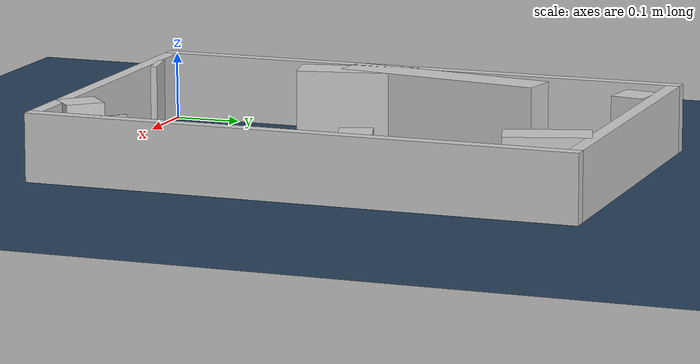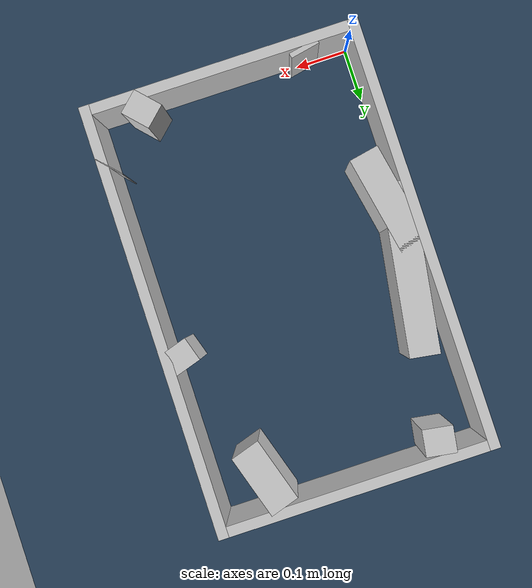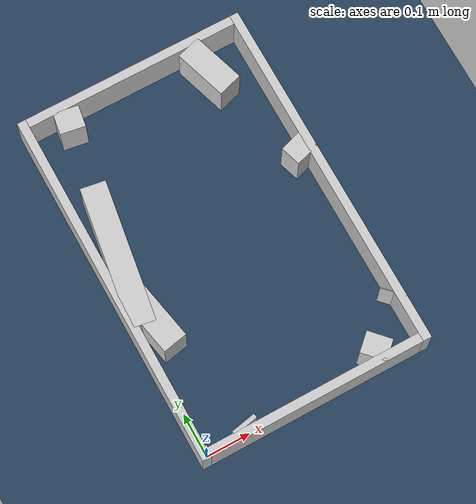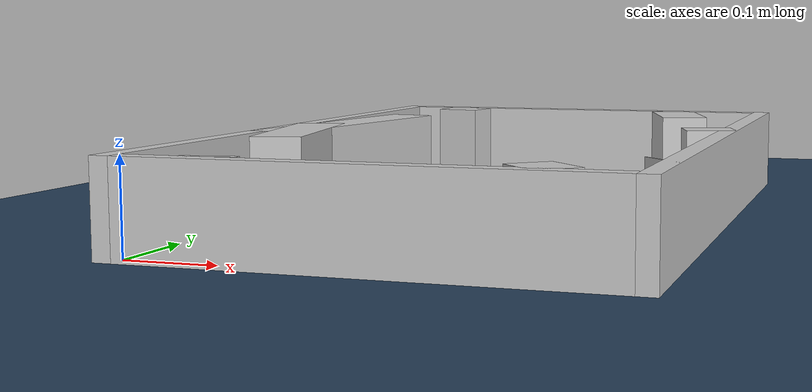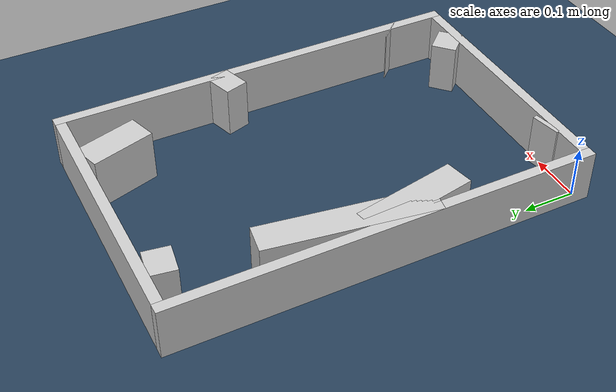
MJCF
<?xml version="1.0" ?>
<mujoco model="generated_real_template">
  <compiler angle="degree"/>
  <option timestep="0.002" integrator="implicitfast" iterations="100" cone="elliptic"/>
  <default>
    <geom density="1"/>
  </default>
  <asset>
    <texture builtin="gradient" height="3072" rgb1="0.3 0.5 0.7" rgb2="0 0 0" type="skybox" width="512"/>
    <texture builtin="checker" height="300" mark="edge" markrgb="0.8 0.8 0.8" name="groundplane" rgb1="0.2 0.3 0.4" rgb2="0.1 0.2 0.3" type="2d" width="300"/>
    <material name="groundplane" reflectance="0.2" texrepeat="5 5" texture="groundplane" texuniform="true"/>
  </asset>
  <worldbody>
    <light dir="0 0 -1" directional="true" pos="0 0 1.5"/>
    <geom name="floor" type="plane" condim="4" friction="0.5 0.005 0.001" material="groundplane" size="0 0 0.05"/>
    <body name="walls">
      <geom name="wall_boundary_left" type="box" condim="4" friction="1.0 0.005 0.0001" rgba="0.8 0.8 0.8 1" pos="-0.010000 0.387500 0.050000" euler="0 0 0.000000" size="0.010000 0.407500 0.050000"/>
      <geom name="wall_boundary_right" type="box" condim="4" friction="1.0 0.005 0.0001" rgba="0.8 0.8 0.8 1" pos="0.500000 0.387500 0.050000" euler="0 0 0.000000" size="0.010000 0.407500 0.050000"/>
      <geom name="wall_boundary_bottom" type="box" condim="4" friction="1.0 0.005 0.0001" rgba="0.8 0.8 0.8 1" pos="0.245000 -0.010000 0.050000" euler="0 0 0.000000" size="0.245000 0.010000 0.050000"/>
      <geom name="wall_boundary_top" type="box" condim="4" friction="1.0 0.005 0.0001" rgba="0.8 0.8 0.8 1" pos="0.245000 0.785000 0.050000" euler="0 0 0.000000" size="0.245000 0.010000 0.050000"/>
      <geom name="wall_inner_1_1" type="box" condim="4" friction="1.0 0.005 0.0001" rgba="0.8 0.8 0.8 1" pos="0.080713 0.750421 0.050000" euler="0 0 -98.852876" size="0.024876 0.028500 0.050000"/>
      <geom name="wall_inner_1_2" type="box" condim="4" friction="1.0 0.005 0.0001" rgba="0.8 0.8 0.8 1" pos="0.032663 0.441922 0.050000" euler="0 0 -98.852876" size="0.159208 0.028500 0.050000"/>
      <geom name="wall_inner_2_1" type="box" condim="4" friction="1.0 0.005 0.0001" rgba="0.8 0.8 0.8 1" pos="0.475750 0.464565 0.050000" euler="0 0 107.319350" size="0.023652 0.028500 0.050000"/>
      <geom name="wall_inner_2_2" type="box" condim="4" friction="1.0 0.005 0.0001" rgba="0.8 0.8 0.8 1" pos="0.397410 0.715787 0.050000" euler="0 0 107.319350" size="0.062025 0.028500 0.050000"/>
      <geom name="wall_inner_3_1" type="box" condim="4" friction="1.0 0.005 0.0001" rgba="0.8 0.8 0.8 1" pos="0.489426 0.098710 0.050000" euler="0 0 -137.092092" size="0.000784 0.028500 0.050000"/>
      <geom name="wall_inner_3_2" type="box" condim="4" friction="1.0 0.005 0.0001" rgba="0.8 0.8 0.8 1" pos="0.402021 0.017466 0.050000" euler="0 0 -137.092092" size="0.024368 0.028500 0.050000"/>
      <geom name="wall_inner_4_1" type="box" condim="4" friction="1.0 0.005 0.0001" rgba="0.8 0.8 0.8 1" pos="0.027658 0.319217 0.050000" euler="0 0 -78.919141" size="0.102440 0.028500 0.050000"/>
      <geom name="wall_inner_4_2" type="box" condim="4" friction="1.0 0.005 0.0001" rgba="0.8 0.8 0.8 1" pos="0.089254 0.004703 0.050000" euler="0 0 -78.919141" size="0.004792 0.028500 0.050000"/>
    </body>
  </worldbody>
</mujoco>
